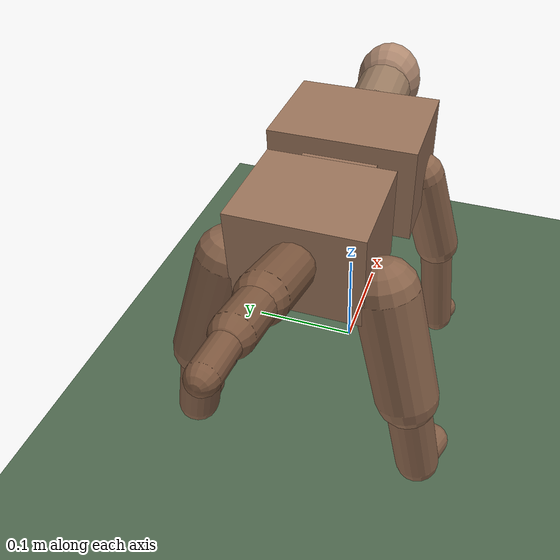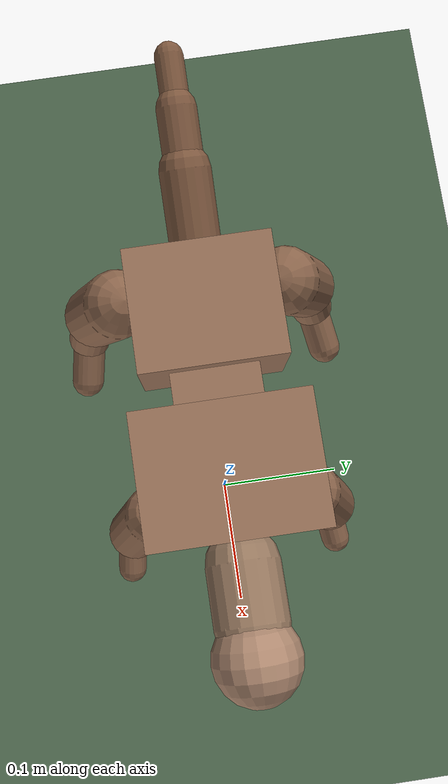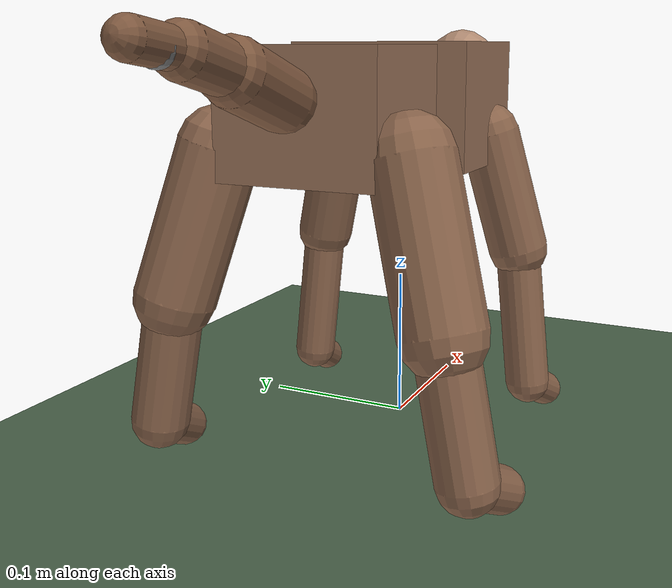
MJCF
<mujoco model="lucy">
  <!-- Lucy: Pre-hominid ancestor for quadrupedal/bipedal RL locomotion -->
  <compiler angle="degree" coordinate="local" inertiafromgeom="true" autolimits="true"/>
  <option integrator="RK4" timestep="0.005" gravity="0 0 -9.81">
    <flag warmstart="enable" multiccd="enable"/>
  </option>
  <size nconmax="200" njmax="500"/>

  <custom>
    <numeric data="0.0 0.0 0.22 1.0 0.0 0.0 0.0" name="init_qpos"/>
  </custom>

  <!-- ==================== DEFAULT CLASSES ==================== -->
  <default>
    <!-- Global defaults -->
    <joint armature="0.2" damping="1.0" limited="true" frictionloss="0.1"  />
    <!-- Densities scaled for ~60kg total mass -->
    <geom conaffinity="0" condim="3" density="125.0" friction="1 0.5 0.5" margin="0.001"/>
    <motor ctrllimited="true" ctrlrange="-0.5 0.5"/>

    <!-- Body/torso parts (heavier for stability) -->
    <default class="torso">
      <geom rgba="0.6 0.45 0.35 1" density="300.0"/>
      <joint damping="0.8"/>
    </default>

    <!-- Head and neck -->
    <default class="head">
      <geom rgba="0.7 0.55 0.45 1" density="125.0"/>
      <joint damping="0.6" range="0 70"/>
    </default>

    <default class="neck">
      <geom rgba="0.6 0.48 0.38 1" density="125.0"/>
      <joint damping="0.8" range="0 70"/>
    </default>

    <!-- Front limbs -->
    <default class="front_leg">
      <geom rgba="0.55 0.4 0.3 1" density="125.0"/>

      <default class="front_hip">
        <joint damping="0.5" range="0 60"/>
      </default>
      <default class="front_knee">
        <joint type="hinge" axis="0 1 0" damping="0.6" range="-120 120"/>
      </default>
      <default class="front_ankle">
        <joint type="hinge" axis="0 1 0" damping="0.4" range="-60 60"/>
      </default>
      <default class="front_foot">
        <geom friction="1.5 0.5 0.5" conaffinity="1"/>
      </default>
    </default>

    <!-- Hind limbs (stronger for propulsion) -->
    <default class="hind_leg">
      <geom rgba="0.55 0.4 0.3 1" density="125.0"/>

      <default class="hind_hip">
        <joint damping="0.5" range="0 70"/>
      </default>
      <default class="hind_knee">
        <joint type="hinge" axis="0 1 0" damping="0.6" range="-130 120"/>
      </default>
      <default class="hind_ankle">
        <joint type="hinge" axis="0 1 0" damping="0.4" range="-60 60"/>
      </default>
      <default class="hind_foot">
        <geom friction="1.5 0.5 0.5" conaffinity="1"/>
      </default>
    </default>

    <!-- Tail segments (high flexion for balance/expression) -->
    <default class="tail">
      <geom rgba="0.5 0.35 0.25 1" density="125.0"/>
      <joint damping="0.3"/>

      <default class="tail_base">
        <joint range="0 120"/>
      </default>
      <default class="tail_mid">
        <joint range="0 120"/>
      </default>
      <default class="tail_tip">
        <joint range="0 120"/>
      </default>
    </default>
  </default>

  <!-- ==================== ASSETS ==================== -->
  <asset>
    <texture builtin="gradient" height="100" rgb1="0.8 0.9 1" rgb2="0.4 0.5 0.6" type="skybox" width="100"/>
    <texture builtin="checker" height="100" name="texplane" rgb1="0.2 0.3 0.2" rgb2="0.4 0.5 0.4" type="2d" width="100"/>
    <!-- Roblox face texture -->
    <texture name="face_tex" type="2d" file="roblox_face.png"/>
    <material name="MatPlane" reflectance="0.5" shininess="1" specular="1" texrepeat="60 60" texture="texplane"/>
    <material name="face" texture="face_tex" texrepeat="1 1"/>
  </asset>

  <!-- ==================== WORLD ==================== -->
  <worldbody>
    <light cutoff="100" diffuse="1 1 1" dir="0 0 -1.3" directional="true" exponent="1" pos="0 0 1.3" specular=".1 .1 .1"/>
    <geom conaffinity="1" condim="3" material="MatPlane" name="floor" pos="0 0 0" size="40 40 0.1" type="plane" margin="0.001"/>

    <!-- ========== CHEST ========== -->
    <body name="chest" pos="0 0 0.22">
      <camera name="track" mode="trackcom" pos="0 -1 0.1" xyaxes="1 0 0 0 0 1"/>
      <joint name="root" type="free" armature="0" damping="0" limited="false"/>
      <geom class="torso" name="chest_geom" type="box" size="0.045 0.06 0.04"/>
      <site name="chest_site" pos="0 0 0" size="0.01"/>

      <!-- ========== NECK + HEAD ========== -->
      <body name="neck" pos="0.06 0 0.01">
        <joint class="neck" name="neck_base" type="ball" pos="-0.02 0 0"/>
        <geom class="neck" name="neck_geom" type="capsule" fromto="0 0 0 0.04 0 0.005" size="0.025"/>
        <site name="neck_site" pos="0.02 0 0" size="0.01"/>

        <body name="head" pos="0.05 0 0.005">
          <joint class="head" name="neck_head" type="ball" pos="-0.02 0 0"/>
          <geom class="head" name="head_geom" type="ellipsoid" size="0.035 0.03 0.03" pos="0.01 0 0" euler="0 90 0" material="face"/>
          <site name="head_site" pos="0.01 0 0" size="0.01"/>
        </body>
      </body>

      <!-- ========== FRONT LEFT LEG ========== -->
      <body name="front_left_thigh" pos="0.02 0.055 -0.02">
        <joint class="front_hip" name="front_left_hip" type="ball"/>
        <geom class="front_leg" name="front_left_thigh_geom" type="capsule" fromto="0 0 0 0.01 0.02 -0.08" size="0.02"/>
        <site name="front_left_thigh_site" pos="0.005 0.01 -0.04" size="0.01"/>

        <body name="front_left_shin" pos="0.01 0.02 -0.08">
          <joint class="front_knee" name="front_left_knee" type="hinge"/>
          <geom class="front_leg" name="front_left_shin_geom" type="capsule" fromto="0 0 0 0 0.01 -0.095" size="0.015"/>
          <site name="front_left_shin_site" pos="0 0.005 -0.047" size="0.01"/>

          <body name="front_left_foot" pos="0 0.01 -0.095">
            <joint class="front_ankle" name="front_left_ankle" type="hinge"/>
            <geom class="front_foot" name="front_left_foot_geom" type="capsule" fromto="0 0 0 0.03 0.005 -0.015" size="0.012"/>
            <site name="front_left_foot_site" pos="0.03 0.005 -0.015" size="0.01"/>
          </body>
        </body>
      </body>

      <!-- ========== FRONT RIGHT LEG ========== -->
      <body name="front_right_thigh" pos="0.02 -0.055 -0.02">
        <joint class="front_hip" name="front_right_hip" type="ball"/>
        <geom class="front_leg" name="front_right_thigh_geom" type="capsule" fromto="0 0 0 0.01 -0.02 -0.08" size="0.02"/>
        <site name="front_right_thigh_site" pos="0.005 -0.01 -0.04" size="0.01"/>

        <body name="front_right_shin" pos="0.01 -0.02 -0.08">
          <joint class="front_knee" name="front_right_knee" type="hinge"/>
          <geom class="front_leg" name="front_right_shin_geom" type="capsule" fromto="0 0 0 0 -0.01 -0.095" size="0.015"/>
          <site name="front_right_shin_site" pos="0 -0.005 -0.047" size="0.01"/>

          <body name="front_right_foot" pos="0 -0.01 -0.095">
            <joint class="front_ankle" name="front_right_ankle" type="hinge"/>
            <geom class="front_foot" name="front_right_foot_geom" type="capsule" fromto="0 0 0 0.03 -0.005 -0.015" size="0.012"/>
            <site name="front_right_foot_site" pos="0.03 -0.005 -0.015" size="0.01"/>
          </body>
        </body>
      </body>

      <!-- ========== TRUNK ========== -->
      <body name="trunk" pos="-0.06 0 0">
        <joint class="torso" name="spine_chest" type="ball" pos="0.02 0 0" range="0 35"/>
        <geom class="torso" name="trunk_geom" type="box" size="0.02 0.03 0.025"/>
        <site name="trunk_site" pos="0 0 0" size="0.01"/>

        <!-- ========== HIPS ========== -->
        <body name="hips" pos="-0.05 0 0">
          <joint class="torso" name="spine_hips" type="ball" pos="0.02 0 0" range="0 35"/>
          <geom class="torso" name="hips_geom" type="box" size="0.042 0.05 0.038"/>
          <site name="hips_site" pos="0 0 0" size="0.01"/>

          <!-- ========== HIND LEFT LEG ========== -->
          <body name="hind_left_thigh" pos="-0.02 0.06 -0.02">
            <joint class="hind_hip" name="hind_left_hip" type="ball"/>
            <geom class="hind_leg" name="hind_left_thigh_geom" type="capsule" fromto="0 0 0 -0.015 0.025 -0.09" size="0.025"/>
            <site name="hind_left_thigh_site" pos="-0.007 0.012 -0.045" size="0.01"/>

            <body name="hind_left_shin" pos="-0.015 0.025 -0.09">
              <joint class="hind_knee" name="hind_left_knee" type="hinge"/>
              <geom class="hind_leg" name="hind_left_shin_geom" type="capsule" fromto="0 0 0 0 0.015 -0.08" size="0.018"/>
              <site name="hind_left_shin_site" pos="0 0.007 -0.04" size="0.01"/>

              <body name="hind_left_foot" pos="0 0.015 -0.08">
                <joint class="hind_ankle" name="hind_left_ankle" type="hinge"/>
                <geom class="hind_foot" name="hind_left_foot_geom" type="capsule" fromto="0 0 0 0.035 0.008 -0.018" size="0.014"/>
                <site name="hind_left_foot_site" pos="0.035 0.008 -0.018" size="0.01"/>
              </body>
            </body>
          </body>

          <!-- ========== HIND RIGHT LEG ========== -->
          <body name="hind_right_thigh" pos="-0.02 -0.06 -0.02">
            <joint class="hind_hip" name="hind_right_hip" type="ball"/>
            <geom class="hind_leg" name="hind_right_thigh_geom" type="capsule" fromto="0 0 0 -0.015 -0.025 -0.09" size="0.025"/>
            <site name="hind_right_thigh_site" pos="-0.007 -0.012 -0.045" size="0.01"/>

            <body name="hind_right_shin" pos="-0.015 -0.025 -0.09">
              <joint class="hind_knee" name="hind_right_knee" type="hinge"/>
              <geom class="hind_leg" name="hind_right_shin_geom" type="capsule" fromto="0 0 0 0 -0.015 -0.08" size="0.018"/>
              <site name="hind_right_shin_site" pos="0 -0.007 -0.04" size="0.01"/>

              <body name="hind_right_foot" pos="0 -0.015 -0.08">
                <joint class="hind_ankle" name="hind_right_ankle" type="hinge"/>
                <geom class="hind_foot" name="hind_right_foot_geom" type="capsule" fromto="0 0 0 0.035 -0.008 -0.018" size="0.014"/>
                <site name="hind_right_foot_site" pos="0.035 -0.008 -0.018" size="0.01"/>
              </body>
            </body>
          </body>

          <!-- ========== TAIL ========== -->
          <body name="tail_1" pos="-0.05 0 0.01">
            <joint class="tail_base" name="tail_joint_1" type="ball"/>
            <geom class="tail" name="tail_1_geom" type="capsule" fromto="0 0 0 -0.045 0 0.015" size="0.018"/>
            <site name="tail_1_site" pos="-0.022 0 0.007" size="0.01"/>

            <body name="tail_2" pos="-0.045 0 0.015">
              <joint class="tail_mid" name="tail_joint_2" type="ball"/>
              <geom class="tail" name="tail_2_geom" type="capsule" fromto="0 0 0 -0.04 0 0.01" size="0.014"/>
              <site name="tail_2_site" pos="-0.02 0 0.005" size="0.01"/>

              <body name="tail_3" pos="-0.04 0 0.01">
                <joint class="tail_tip" name="tail_joint_3" type="ball"/>
                <geom class="tail" name="tail_3_geom" type="capsule" fromto="0 0 0 -0.035 0 0.005" size="0.01"/>
                <site name="tail_3_site" pos="-0.017 0 0.002" size="0.01"/>
              </body>
            </body>
          </body>

        </body>
      </body>
    </body>
  </worldbody>

  <!-- ==================== ACTUATORS ==================== -->
  <!-- Position actuators with PD control for stable RL training -->
  <actuator>
    <!-- Neck/Head (ball joints need 3 actuators each, but motor works on principal axis) -->
    <motor name="neck_base" joint="neck_base" gear="5" ctrllimited="true" ctrlrange="-0.5 0.5"/>
    <motor name="neck_head" joint="neck_head" gear="5" ctrllimited="true" ctrlrange="-0.5 0.5"/>

    <!-- Spine -->
    <motor name="spine_chest" joint="spine_chest" gear="10" ctrllimited="true" ctrlrange="-0.5 0.5"/>
    <motor name="spine_hips" joint="spine_hips" gear="10" ctrllimited="true" ctrlrange="-0.5 0.5"/>

    <!-- Front Left -->
    <motor name="fl_hip" joint="front_left_hip" gear="10" ctrllimited="true" ctrlrange="-0.5 0.5"/>
    <motor name="fl_knee" joint="front_left_knee" gear="5" ctrllimited="true" ctrlrange="-0.5 0.5"/>
    <motor name="fl_ankle" joint="front_left_ankle" gear="5" ctrllimited="true" ctrlrange="-0.5 0.5"/>

    <!-- Front Right -->
    <motor name="fr_hip" joint="front_right_hip" gear="10" ctrllimited="true" ctrlrange="-0.5 0.5"/>
    <motor name="fr_knee" joint="front_right_knee" gear="5" ctrllimited="true" ctrlrange="-0.5 0.5"/>
    <motor name="fr_ankle" joint="front_right_ankle" gear="5" ctrllimited="true" ctrlrange="-0.5 0.5"/>

    <!-- Hind Left -->
    <motor name="hl_hip" joint="hind_left_hip" gear="10" ctrllimited="true" ctrlrange="-0.5 0.5"/>
    <motor name="hl_knee" joint="hind_left_knee" gear="10" ctrllimited="true" ctrlrange="-0.5 0.5"/>
    <motor name="hl_ankle" joint="hind_left_ankle" gear="5" ctrllimited="true" ctrlrange="-0.5 0.5"/>

    <!-- Hind Right -->
    <motor name="hr_hip" joint="hind_right_hip" gear="10" ctrllimited="true" ctrlrange="-0.5 0.5"/>
    <motor name="hr_knee" joint="hind_right_knee" gear="10" ctrllimited="true" ctrlrange="-0.5 0.5"/>
    <motor name="hr_ankle" joint="hind_right_ankle" gear="5" ctrllimited="true" ctrlrange="-0.5 0.5"/>

    <!-- Tail -->
    <motor name="tail_1" joint="tail_joint_1" gear="5" ctrllimited="true" ctrlrange="-0.5 0.5"/>
    <motor name="tail_2" joint="tail_joint_2" gear="5" ctrllimited="true" ctrlrange="-0.5 0.5"/>
    <motor name="tail_3" joint="tail_joint_3" gear="5" ctrllimited="true" ctrlrange="-0.5 0.5"/>
  </actuator>

  <!-- ==================== SENSORS ==================== -->
  <!-- Organized by type for efficient observation vector construction -->
  <sensor>
    <!-- === IMU (9 dims: 3 accel + 3 gyro + 3 vel) === -->
    <accelerometer name="imu_acc" site="chest_site"/>
    <gyro name="imu_gyro" site="chest_site"/>
    <velocimeter name="imu_vel" site="chest_site"/>

    <!-- === Foot contacts (4 dims - critical for gait) === -->
    <touch name="touch_fl" site="front_left_foot_site"/>
    <touch name="touch_fr" site="front_right_foot_site"/>
    <touch name="touch_hl" site="hind_left_foot_site"/>
    <touch name="touch_hr" site="hind_right_foot_site"/>

    <!-- === Ball joint orientations (11 joints × 4 quat = 44 dims) === -->
    <ballquat name="q_neck_base" joint="neck_base"/>
    <ballquat name="q_neck_head" joint="neck_head"/>
    <ballquat name="q_spine_chest" joint="spine_chest"/>
    <ballquat name="q_spine_hips" joint="spine_hips"/>
    <ballquat name="q_fl_hip" joint="front_left_hip"/>
    <ballquat name="q_fr_hip" joint="front_right_hip"/>
    <ballquat name="q_hl_hip" joint="hind_left_hip"/>
    <ballquat name="q_hr_hip" joint="hind_right_hip"/>
    <ballquat name="q_tail1" joint="tail_joint_1"/>
    <ballquat name="q_tail2" joint="tail_joint_2"/>
    <ballquat name="q_tail3" joint="tail_joint_3"/>

    <!-- === Hinge joint positions (8 dims) === -->
    <jointpos name="p_fl_knee" joint="front_left_knee"/>
    <jointpos name="p_fl_ankle" joint="front_left_ankle"/>
    <jointpos name="p_fr_knee" joint="front_right_knee"/>
    <jointpos name="p_fr_ankle" joint="front_right_ankle"/>
    <jointpos name="p_hl_knee" joint="hind_left_knee"/>
    <jointpos name="p_hl_ankle" joint="hind_left_ankle"/>
    <jointpos name="p_hr_knee" joint="hind_right_knee"/>
    <jointpos name="p_hr_ankle" joint="hind_right_ankle"/>

    <!-- === Ball joint angular velocities (11 × 3 = 33 dims) === -->
    <ballangvel name="w_neck_base" joint="neck_base"/>
    <ballangvel name="w_neck_head" joint="neck_head"/>
    <ballangvel name="w_spine_chest" joint="spine_chest"/>
    <ballangvel name="w_spine_hips" joint="spine_hips"/>
    <ballangvel name="w_fl_hip" joint="front_left_hip"/>
    <ballangvel name="w_fr_hip" joint="front_right_hip"/>
    <ballangvel name="w_hl_hip" joint="hind_left_hip"/>
    <ballangvel name="w_hr_hip" joint="hind_right_hip"/>
    <ballangvel name="w_tail1" joint="tail_joint_1"/>
    <ballangvel name="w_tail2" joint="tail_joint_2"/>
    <ballangvel name="w_tail3" joint="tail_joint_3"/>

    <!-- === Hinge joint velocities (8 dims) === -->
    <jointvel name="v_fl_knee" joint="front_left_knee"/>
    <jointvel name="v_fl_ankle" joint="front_left_ankle"/>
    <jointvel name="v_fr_knee" joint="front_right_knee"/>
    <jointvel name="v_fr_ankle" joint="front_right_ankle"/>
    <jointvel name="v_hl_knee" joint="hind_left_knee"/>
    <jointvel name="v_hl_ankle" joint="hind_left_ankle"/>
    <jointvel name="v_hr_knee" joint="hind_right_knee"/>
    <jointvel name="v_hr_ankle" joint="hind_right_ankle"/>

    <!-- === Frame orientation (for reward shaping) === -->
    <framequat name="chest_orient" objtype="body" objname="chest"/>
  </sensor>

  <!-- ==================== KEYFRAMES ==================== -->
  <keyframe>
    <!-- Stable quadruped stance - legs slightly bent, weight distributed -->
    <key name="quad_stance" qpos="
      0 0 0.12 1 0 0 0
      1 0 0 0
      1 0 0 0
      1 0 0 0  -0.7 0.3
      1 0 0 0  -0.7 0.3
      1 0 0 0
      1 0 0 0
      1 0 0 0  -0.6 0.25
      1 0 0 0  -0.6 0.25
      1 0 0 0
      1 0 0 0
      1 0 0 0
    "/>
  </keyframe>

  <!-- ==================== CONTACT EXCLUSIONS ==================== -->
  <contact>
    <exclude body1="chest" body2="trunk"/>
    <exclude body1="trunk" body2="hips"/>
    <exclude body1="chest" body2="neck"/>
    <exclude body1="neck" body2="head"/>
    <exclude body1="hips" body2="tail_1"/>
    <exclude body1="tail_1" body2="tail_2"/>
    <exclude body1="tail_2" body2="tail_3"/>
    <exclude body1="front_left_thigh" body2="chest"/>
    <exclude body1="front_right_thigh" body2="chest"/>
    <exclude body1="hind_left_thigh" body2="hips"/>
    <exclude body1="hind_right_thigh" body2="hips"/>
  </contact>
</mujoco>
